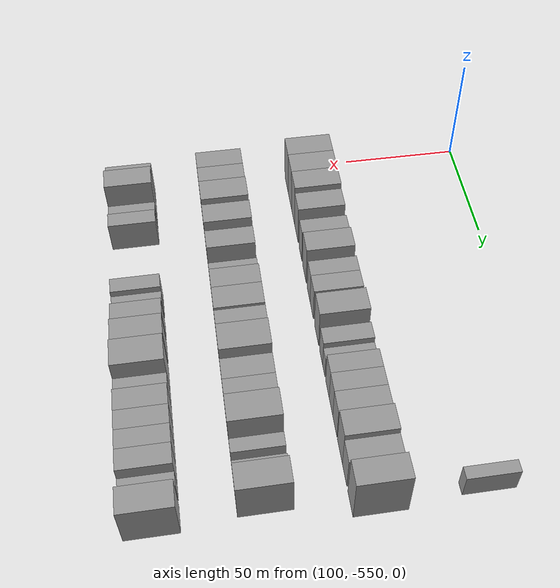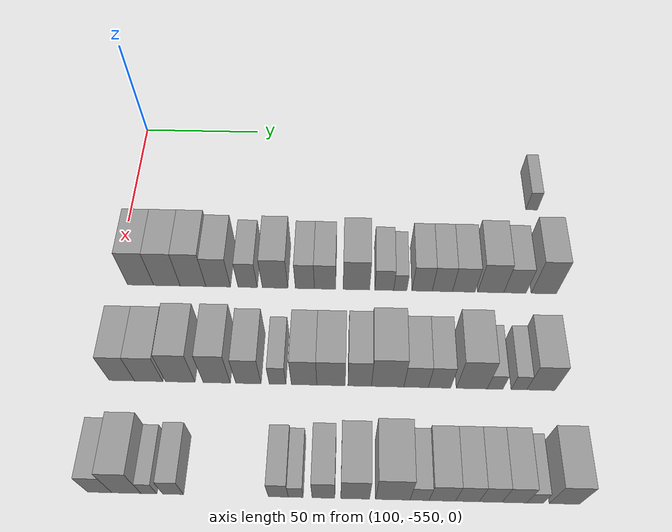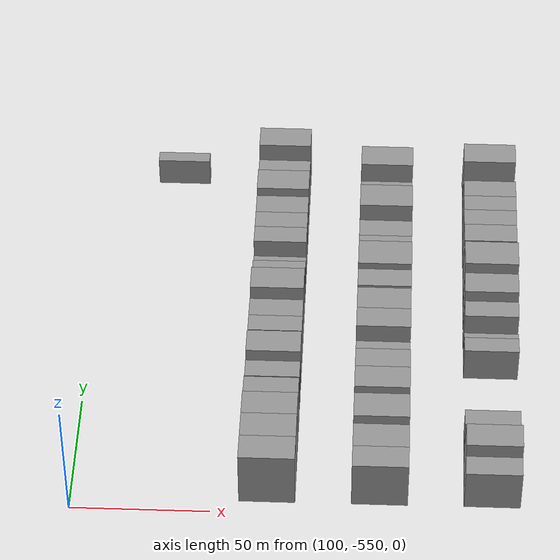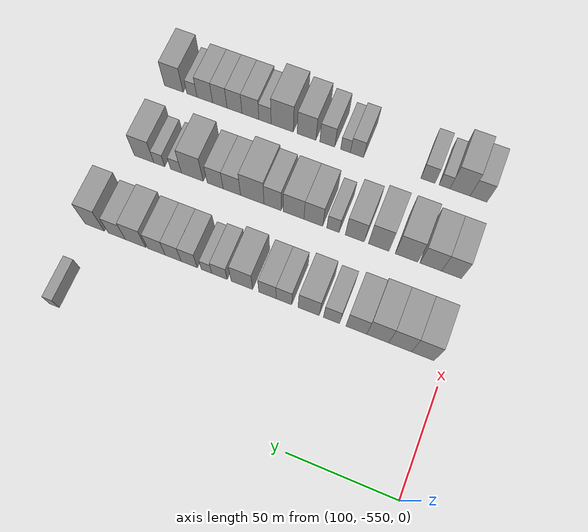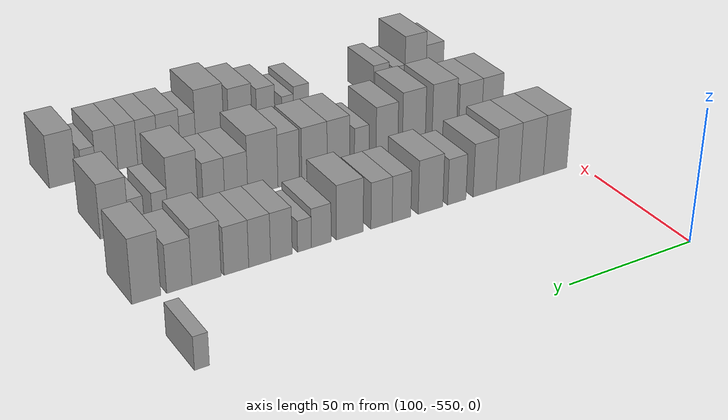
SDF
<sdf version="1.6">
 <world name="default">
  <model name="building_296">
   <static>1</static>
   <pose>130.0000 -380.8718 0 0.000000 0.000000 0.000000</pose>
   <link name="link">
    <pose>0 0 6.00 0 0 0</pose>
    <collision name="collision"><geometry><box><size>20.0000 4.8590 12.0000</size></box></geometry></collision>
    <visual name="visual">
     <cast_shadows>0</cast_shadows>
     <geometry><box><size>20.0000 4.8590 12.0000</size></box></geometry>
     <material>
      <script>
       <uri>model://grey_wall/materials/scripts</uri>
       <uri>model://grey_wall/materials/textures</uri>
       <name>vrc/grey_wall</name>
      </script>
     </material>
    </visual>
   </link>
  </model>
  <model name="building_418">
   <static>1</static>
   <pose>170.0000 -539.7551 0 0.000000 0.000000 0.000000</pose>
   <link name="link">
    <pose>0 0 12.00 0 0 0</pose>
    <collision name="collision"><geometry><box><size>20.0000 10.3773 24.0000</size></box></geometry></collision>
    <visual name="visual">
     <cast_shadows>0</cast_shadows>
     <geometry><box><size>20.0000 10.3773 24.0000</size></box></geometry>
     <material>
      <script>
       <uri>model://grey_wall/materials/scripts</uri>
       <uri>model://grey_wall/materials/textures</uri>
       <name>vrc/grey_wall</name>
      </script>
     </material>
    </visual>
   </link>
  </model>
  <model name="building_419">
   <static>1</static>
   <pose>170.0000 -529.3177 0 0.000000 0.000000 0.000000</pose>
   <link name="link">
    <pose>0 0 12.00 0 0 0</pose>
    <collision name="collision"><geometry><box><size>20.0000 10.4975 24.0000</size></box></geometry></collision>
    <visual name="visual">
     <cast_shadows>0</cast_shadows>
     <geometry><box><size>20.0000 10.4975 24.0000</size></box></geometry>
     <material>
      <script>
       <uri>model://grey_wall/materials/scripts</uri>
       <uri>model://grey_wall/materials/textures</uri>
       <name>vrc/grey_wall</name>
      </script>
     </material>
    </visual>
   </link>
  </model>
  <model name="building_420">
   <static>1</static>
   <pose>170.0000 -518.9870 0 0.000000 0.000000 0.000000</pose>
   <link name="link">
    <pose>0 0 12.00 0 0 0</pose>
    <collision name="collision"><geometry><box><size>20.0000 10.1640 24.0000</size></box></geometry></collision>
    <visual name="visual">
     <cast_shadows>0</cast_shadows>
     <geometry><box><size>20.0000 10.1640 24.0000</size></box></geometry>
     <material>
      <script>
       <uri>model://grey_wall/materials/scripts</uri>
       <uri>model://grey_wall/materials/textures</uri>
       <name>vrc/grey_wall</name>
      </script>
     </material>
    </visual>
   </link>
  </model>
  <model name="building_421">
   <static>1</static>
   <pose>170.0000 -509.0309 0 0.000000 0.000000 0.000000</pose>
   <link name="link">
    <pose>0 0 10.50 0 0 0</pose>
    <collision name="collision"><geometry><box><size>20.0000 9.7484 21.0000</size></box></geometry></collision>
    <visual name="visual">
     <cast_shadows>0</cast_shadows>
     <geometry><box><size>20.0000 9.7484 21.0000</size></box></geometry>
     <material>
      <script>
       <uri>model://grey_wall/materials/scripts</uri>
       <uri>model://grey_wall/materials/textures</uri>
       <name>vrc/grey_wall</name>
      </script>
     </material>
    </visual>
   </link>
  </model>
  <model name="building_422">
   <static>1</static>
   <pose>170.0000 -497.3444 0 0.000000 0.000000 0.000000</pose>
   <link name="link">
    <pose>0 0 9.00 0 0 0</pose>
    <collision name="collision"><geometry><box><size>20.0000 7.6246 18.0000</size></box></geometry></collision>
    <visual name="visual">
     <cast_shadows>0</cast_shadows>
     <geometry><box><size>20.0000 7.6246 18.0000</size></box></geometry>
     <material>
      <script>
       <uri>model://grey_wall/materials/scripts</uri>
       <uri>model://grey_wall/materials/textures</uri>
       <name>vrc/grey_wall</name>
      </script>
     </material>
    </visual>
   </link>
  </model>
  <model name="building_423">
   <static>1</static>
   <pose>170.0000 -486.5003 0 0.000000 0.000000 0.000000</pose>
   <link name="link">
    <pose>0 0 10.50 0 0 0</pose>
    <collision name="collision"><geometry><box><size>20.0000 10.0636 21.0000</size></box></geometry></collision>
    <visual name="visual">
     <cast_shadows>0</cast_shadows>
     <geometry><box><size>20.0000 10.0636 21.0000</size></box></geometry>
     <material>
      <script>
       <uri>model://grey_wall/materials/scripts</uri>
       <uri>model://grey_wall/materials/textures</uri>
       <name>vrc/grey_wall</name>
      </script>
     </material>
    </visual>
   </link>
  </model>
  <model name="building_424">
   <static>1</static>
   <pose>170.0000 -474.7204 0 0.000000 0.000000 0.000000</pose>
   <link name="link">
    <pose>0 0 9.00 0 0 0</pose>
    <collision name="collision"><geometry><box><size>20.0000 7.4962 18.0000</size></box></geometry></collision>
    <visual name="visual">
     <cast_shadows>0</cast_shadows>
     <geometry><box><size>20.0000 7.4962 18.0000</size></box></geometry>
     <material>
      <script>
       <uri>model://grey_wall/materials/scripts</uri>
       <uri>model://grey_wall/materials/textures</uri>
       <name>vrc/grey_wall</name>
      </script>
     </material>
    </visual>
   </link>
  </model>
  <model name="building_425">
   <static>1</static>
   <pose>170.0000 -466.7962 0 0.000000 0.000000 0.000000</pose>
   <link name="link">
    <pose>0 0 9.00 0 0 0</pose>
    <collision name="collision"><geometry><box><size>20.0000 8.3522 18.0000</size></box></geometry></collision>
    <visual name="visual">
     <cast_shadows>0</cast_shadows>
     <geometry><box><size>20.0000 8.3522 18.0000</size></box></geometry>
     <material>
      <script>
       <uri>model://grey_wall/materials/scripts</uri>
       <uri>model://grey_wall/materials/textures</uri>
       <name>vrc/grey_wall</name>
      </script>
     </material>
    </visual>
   </link>
  </model>
  <model name="building_426">
   <static>1</static>
   <pose>170.0000 -454.4233 0 0.000000 0.000000 0.000000</pose>
   <link name="link">
    <pose>0 0 10.50 0 0 0</pose>
    <collision name="collision"><geometry><box><size>20.0000 10.3938 21.0000</size></box></geometry></collision>
    <visual name="visual">
     <cast_shadows>0</cast_shadows>
     <geometry><box><size>20.0000 10.3938 21.0000</size></box></geometry>
     <material>
      <script>
       <uri>model://grey_wall/materials/scripts</uri>
       <uri>model://grey_wall/materials/textures</uri>
       <name>vrc/grey_wall</name>
      </script>
     </material>
    </visual>
   </link>
  </model>
  <model name="building_427">
   <static>1</static>
   <pose>170.0000 -443.4804 0 0.000000 0.000000 0.000000</pose>
   <link name="link">
    <pose>0 0 7.50 0 0 0</pose>
    <collision name="collision"><geometry><box><size>20.0000 7.4918 15.0000</size></box></geometry></collision>
    <visual name="visual">
     <cast_shadows>0</cast_shadows>
     <geometry><box><size>20.0000 7.4918 15.0000</size></box></geometry>
     <material>
      <script>
       <uri>model://grey_wall/materials/scripts</uri>
       <uri>model://grey_wall/materials/textures</uri>
       <name>vrc/grey_wall</name>
      </script>
     </material>
    </visual>
   </link>
  </model>
  <model name="building_428">
   <static>1</static>
   <pose>170.0000 -437.1403 0 0.000000 0.000000 0.000000</pose>
   <link name="link">
    <pose>0 0 6.00 0 0 0</pose>
    <collision name="collision"><geometry><box><size>20.0000 5.1885 12.0000</size></box></geometry></collision>
    <visual name="visual">
     <cast_shadows>0</cast_shadows>
     <geometry><box><size>20.0000 5.1885 12.0000</size></box></geometry>
     <material>
      <script>
       <uri>model://grey_wall/materials/scripts</uri>
       <uri>model://grey_wall/materials/textures</uri>
       <name>vrc/grey_wall</name>
      </script>
     </material>
    </visual>
   </link>
  </model>
  <model name="building_429">
   <static>1</static>
   <pose>170.0000 -428.5635 0 0.000000 0.000000 0.000000</pose>
   <link name="link">
    <pose>0 0 9.00 0 0 0</pose>
    <collision name="collision"><geometry><box><size>20.0000 7.9651 18.0000</size></box></geometry></collision>
    <visual name="visual">
     <cast_shadows>0</cast_shadows>
     <geometry><box><size>20.0000 7.9651 18.0000</size></box></geometry>
     <material>
      <script>
       <uri>model://grey_wall/materials/scripts</uri>
       <uri>model://grey_wall/materials/textures</uri>
       <name>vrc/grey_wall</name>
      </script>
     </material>
    </visual>
   </link>
  </model>
  <model name="building_430">
   <static>1</static>
   <pose>170.0000 -420.6002 0 0.000000 0.000000 0.000000</pose>
   <link name="link">
    <pose>0 0 9.00 0 0 0</pose>
    <collision name="collision"><geometry><box><size>20.0000 7.9614 18.0000</size></box></geometry></collision>
    <visual name="visual">
     <cast_shadows>0</cast_shadows>
     <geometry><box><size>20.0000 7.9614 18.0000</size></box></geometry>
     <material>
      <script>
       <uri>model://grey_wall/materials/scripts</uri>
       <uri>model://grey_wall/materials/textures</uri>
       <name>vrc/grey_wall</name>
      </script>
     </material>
    </visual>
   </link>
  </model>
  <model name="building_431">
   <static>1</static>
   <pose>170.0000 -412.1795 0 0.000000 0.000000 0.000000</pose>
   <link name="link">
    <pose>0 0 9.00 0 0 0</pose>
    <collision name="collision"><geometry><box><size>20.0000 8.8801 18.0000</size></box></geometry></collision>
    <visual name="visual">
     <cast_shadows>0</cast_shadows>
     <geometry><box><size>20.0000 8.8801 18.0000</size></box></geometry>
     <material>
      <script>
       <uri>model://grey_wall/materials/scripts</uri>
       <uri>model://grey_wall/materials/textures</uri>
       <name>vrc/grey_wall</name>
      </script>
     </material>
    </visual>
   </link>
  </model>
  <model name="building_432">
   <static>1</static>
   <pose>170.0000 -401.6012 0 0.000000 0.000000 0.000000</pose>
   <link name="link">
    <pose>0 0 10.50 0 0 0</pose>
    <collision name="collision"><geometry><box><size>20.0000 10.2764 21.0000</size></box></geometry></collision>
    <visual name="visual">
     <cast_shadows>0</cast_shadows>
     <geometry><box><size>20.0000 10.2764 21.0000</size></box></geometry>
     <material>
      <script>
       <uri>model://grey_wall/materials/scripts</uri>
       <uri>model://grey_wall/materials/textures</uri>
       <name>vrc/grey_wall</name>
      </script>
     </material>
    </visual>
   </link>
  </model>
  <model name="building_433">
   <static>1</static>
   <pose>170.0000 -392.0845 0 0.000000 0.000000 0.000000</pose>
   <link name="link">
    <pose>0 0 9.00 0 0 0</pose>
    <collision name="collision"><geometry><box><size>20.0000 8.7571 18.0000</size></box></geometry></collision>
    <visual name="visual">
     <cast_shadows>0</cast_shadows>
     <geometry><box><size>20.0000 8.7571 18.0000</size></box></geometry>
     <material>
      <script>
       <uri>model://grey_wall/materials/scripts</uri>
       <uri>model://grey_wall/materials/textures</uri>
       <name>vrc/grey_wall</name>
      </script>
     </material>
    </visual>
   </link>
  </model>
  <model name="building_434">
   <static>1</static>
   <pose>170.0000 -380.7752 0 0.000000 0.000000 0.000000</pose>
   <link name="link">
    <pose>0 0 12.00 0 0 0</pose>
    <collision name="collision"><geometry><box><size>20.0000 9.8614 24.0000</size></box></geometry></collision>
    <visual name="visual">
     <cast_shadows>0</cast_shadows>
     <geometry><box><size>20.0000 9.8614 24.0000</size></box></geometry>
     <material>
      <script>
       <uri>model://grey_wall/materials/scripts</uri>
       <uri>model://grey_wall/materials/textures</uri>
       <name>vrc/grey_wall</name>
      </script>
     </material>
    </visual>
   </link>
  </model>
  <model name="building_554">
   <static>1</static>
   <pose>210.0000 -540.0779 0 0.000000 0.000000 0.000000</pose>
   <link name="link">
    <pose>0 0 10.50 0 0 0</pose>
    <collision name="collision"><geometry><box><size>20.0000 9.3793 21.0000</size></box></geometry></collision>
    <visual name="visual">
     <cast_shadows>0</cast_shadows>
     <geometry><box><size>20.0000 9.3793 21.0000</size></box></geometry>
     <material>
      <script>
       <uri>model://grey_wall/materials/scripts</uri>
       <uri>model://grey_wall/materials/textures</uri>
       <name>vrc/grey_wall</name>
      </script>
     </material>
    </visual>
   </link>
  </model>
  <model name="building_555">
   <static>1</static>
   <pose>210.0000 -530.2033 0 0.000000 0.000000 0.000000</pose>
   <link name="link">
    <pose>0 0 10.50 0 0 0</pose>
    <collision name="collision"><geometry><box><size>20.0000 10.3700 21.0000</size></box></geometry></collision>
    <visual name="visual">
     <cast_shadows>0</cast_shadows>
     <geometry><box><size>20.0000 10.3700 21.0000</size></box></geometry>
     <material>
      <script>
       <uri>model://grey_wall/materials/scripts</uri>
       <uri>model://grey_wall/materials/textures</uri>
       <name>vrc/grey_wall</name>
      </script>
     </material>
    </visual>
   </link>
  </model>
  <model name="building_556">
   <static>1</static>
   <pose>210.0000 -518.5811 0 0.000000 0.000000 0.000000</pose>
   <link name="link">
    <pose>0 0 12.00 0 0 0</pose>
    <collision name="collision"><geometry><box><size>20.0000 10.8743 24.0000</size></box></geometry></collision>
    <visual name="visual">
     <cast_shadows>0</cast_shadows>
     <geometry><box><size>20.0000 10.8743 24.0000</size></box></geometry>
     <material>
      <script>
       <uri>model://grey_wall/materials/scripts</uri>
       <uri>model://grey_wall/materials/textures</uri>
       <name>vrc/grey_wall</name>
      </script>
     </material>
    </visual>
   </link>
  </model>
  <model name="building_557">
   <static>1</static>
   <pose>210.0000 -505.1703 0 0.000000 0.000000 0.000000</pose>
   <link name="link">
    <pose>0 0 12.00 0 0 0</pose>
    <collision name="collision"><geometry><box><size>20.0000 9.9472 24.0000</size></box></geometry></collision>
    <visual name="visual">
     <cast_shadows>0</cast_shadows>
     <geometry><box><size>20.0000 9.9472 24.0000</size></box></geometry>
     <material>
      <script>
       <uri>model://grey_wall/materials/scripts</uri>
       <uri>model://grey_wall/materials/textures</uri>
       <name>vrc/grey_wall</name>
      </script>
     </material>
    </visual>
   </link>
  </model>
  <model name="building_558">
   <static>1</static>
   <pose>210.0000 -493.5555 0 0.000000 0.000000 0.000000</pose>
   <link name="link">
    <pose>0 0 10.50 0 0 0</pose>
    <collision name="collision"><geometry><box><size>20.0000 9.2826 21.0000</size></box></geometry></collision>
    <visual name="visual">
     <cast_shadows>0</cast_shadows>
     <geometry><box><size>20.0000 9.2826 21.0000</size></box></geometry>
     <material>
      <script>
       <uri>model://grey_wall/materials/scripts</uri>
       <uri>model://grey_wall/materials/textures</uri>
       <name>vrc/grey_wall</name>
      </script>
     </material>
    </visual>
   </link>
  </model>
  <model name="building_559">
   <static>1</static>
   <pose>210.0000 -482.8533 0 0.000000 0.000000 0.000000</pose>
   <link name="link">
    <pose>0 0 7.50 0 0 0</pose>
    <collision name="collision"><geometry><box><size>20.0000 6.1217 15.0000</size></box></geometry></collision>
    <visual name="visual">
     <cast_shadows>0</cast_shadows>
     <geometry><box><size>20.0000 6.1217 15.0000</size></box></geometry>
     <material>
      <script>
       <uri>model://grey_wall/materials/scripts</uri>
       <uri>model://grey_wall/materials/textures</uri>
       <name>vrc/grey_wall</name>
      </script>
     </material>
    </visual>
   </link>
  </model>
  <model name="building_560">
   <static>1</static>
   <pose>210.0000 -473.1488 0 0.000000 0.000000 0.000000</pose>
   <link name="link">
    <pose>0 0 10.50 0 0 0</pose>
    <collision name="collision"><geometry><box><size>20.0000 9.2872 21.0000</size></box></geometry></collision>
    <visual name="visual">
     <cast_shadows>0</cast_shadows>
     <geometry><box><size>20.0000 9.2872 21.0000</size></box></geometry>
     <material>
      <script>
       <uri>model://grey_wall/materials/scripts</uri>
       <uri>model://grey_wall/materials/textures</uri>
       <name>vrc/grey_wall</name>
      </script>
     </material>
    </visual>
   </link>
  </model>
  <model name="building_561">
   <static>1</static>
   <pose>210.0000 -463.3242 0 0.000000 0.000000 0.000000</pose>
   <link name="link">
    <pose>0 0 10.50 0 0 0</pose>
    <collision name="collision"><geometry><box><size>20.0000 10.3621 21.0000</size></box></geometry></collision>
    <visual name="visual">
     <cast_shadows>0</cast_shadows>
     <geometry><box><size>20.0000 10.3621 21.0000</size></box></geometry>
     <material>
      <script>
       <uri>model://grey_wall/materials/scripts</uri>
       <uri>model://grey_wall/materials/textures</uri>
       <name>vrc/grey_wall</name>
      </script>
     </material>
    </visual>
   </link>
  </model>
  <model name="building_562">
   <static>1</static>
   <pose>210.0000 -452.8515 0 0.000000 0.000000 0.000000</pose>
   <link name="link">
    <pose>0 0 10.50 0 0 0</pose>
    <collision name="collision"><geometry><box><size>20.0000 8.5832 21.0000</size></box></geometry></collision>
    <visual name="visual">
     <cast_shadows>0</cast_shadows>
     <geometry><box><size>20.0000 8.5832 21.0000</size></box></geometry>
     <material>
      <script>
       <uri>model://grey_wall/materials/scripts</uri>
       <uri>model://grey_wall/materials/textures</uri>
       <name>vrc/grey_wall</name>
      </script>
     </material>
    </visual>
   </link>
  </model>
  <model name="building_563">
   <static>1</static>
   <pose>210.0000 -442.6322 0 0.000000 0.000000 0.000000</pose>
   <link name="link">
    <pose>0 0 12.00 0 0 0</pose>
    <collision name="collision"><geometry><box><size>20.0000 11.8555 24.0000</size></box></geometry></collision>
    <visual name="visual">
     <cast_shadows>0</cast_shadows>
     <geometry><box><size>20.0000 11.8555 24.0000</size></box></geometry>
     <material>
      <script>
       <uri>model://grey_wall/materials/scripts</uri>
       <uri>model://grey_wall/materials/textures</uri>
       <name>vrc/grey_wall</name>
      </script>
     </material>
    </visual>
   </link>
  </model>
  <model name="building_564">
   <static>1</static>
   <pose>210.0000 -432.2557 0 0.000000 0.000000 0.000000</pose>
   <link name="link">
    <pose>0 0 9.00 0 0 0</pose>
    <collision name="collision"><geometry><box><size>20.0000 8.8976 18.0000</size></box></geometry></collision>
    <visual name="visual">
     <cast_shadows>0</cast_shadows>
     <geometry><box><size>20.0000 8.8976 18.0000</size></box></geometry>
     <material>
      <script>
       <uri>model://grey_wall/materials/scripts</uri>
       <uri>model://grey_wall/materials/textures</uri>
       <name>vrc/grey_wall</name>
      </script>
     </material>
    </visual>
   </link>
  </model>
  <model name="building_565">
   <static>1</static>
   <pose>210.0000 -423.7216 0 0.000000 0.000000 0.000000</pose>
   <link name="link">
    <pose>0 0 9.00 0 0 0</pose>
    <collision name="collision"><geometry><box><size>20.0000 8.1706 18.0000</size></box></geometry></collision>
    <visual name="visual">
     <cast_shadows>0</cast_shadows>
     <geometry><box><size>20.0000 8.1706 18.0000</size></box></geometry>
     <material>
      <script>
       <uri>model://grey_wall/materials/scripts</uri>
       <uri>model://grey_wall/materials/textures</uri>
       <name>vrc/grey_wall</name>
      </script>
     </material>
    </visual>
   </link>
  </model>
  <model name="building_566">
   <static>1</static>
   <pose>210.0000 -411.9865 0 0.000000 0.000000 0.000000</pose>
   <link name="link">
    <pose>0 0 12.00 0 0 0</pose>
    <collision name="collision"><geometry><box><size>20.0000 11.2995 24.0000</size></box></geometry></collision>
    <visual name="visual">
     <cast_shadows>0</cast_shadows>
     <geometry><box><size>20.0000 11.2995 24.0000</size></box></geometry>
     <material>
      <script>
       <uri>model://grey_wall/materials/scripts</uri>
       <uri>model://grey_wall/materials/textures</uri>
       <name>vrc/grey_wall</name>
      </script>
     </material>
    </visual>
   </link>
  </model>
  <model name="building_567">
   <static>1</static>
   <pose>210.0000 -403.4936 0 0.000000 0.000000 0.000000</pose>
   <link name="link">
    <pose>0 0 6.00 0 0 0</pose>
    <collision name="collision"><geometry><box><size>20.0000 5.6864 12.0000</size></box></geometry></collision>
    <visual name="visual">
     <cast_shadows>0</cast_shadows>
     <geometry><box><size>20.0000 5.6864 12.0000</size></box></geometry>
     <material>
      <script>
       <uri>model://grey_wall/materials/scripts</uri>
       <uri>model://grey_wall/materials/textures</uri>
       <name>vrc/grey_wall</name>
      </script>
     </material>
    </visual>
   </link>
  </model>
  <model name="building_568">
   <static>1</static>
   <pose>210.0000 -394.8046 0 0.000000 0.000000 0.000000</pose>
   <link name="link">
    <pose>0 0 6.00 0 0 0</pose>
    <collision name="collision"><geometry><box><size>20.0000 5.6917 12.0000</size></box></geometry></collision>
    <visual name="visual">
     <cast_shadows>0</cast_shadows>
     <geometry><box><size>20.0000 5.6917 12.0000</size></box></geometry>
     <material>
      <script>
       <uri>model://grey_wall/materials/scripts</uri>
       <uri>model://grey_wall/materials/textures</uri>
       <name>vrc/grey_wall</name>
      </script>
     </material>
    </visual>
   </link>
  </model>
  <model name="building_569">
   <static>1</static>
   <pose>210.0000 -386.8399 0 0.000000 0.000000 0.000000</pose>
   <link name="link">
    <pose>0 0 10.50 0 0 0</pose>
    <collision name="collision"><geometry><box><size>20.0000 10.2375 21.0000</size></box></geometry></collision>
    <visual name="visual">
     <cast_shadows>0</cast_shadows>
     <geometry><box><size>20.0000 10.2375 21.0000</size></box></geometry>
     <material>
      <script>
       <uri>model://grey_wall/materials/scripts</uri>
       <uri>model://grey_wall/materials/textures</uri>
       <name>vrc/grey_wall</name>
      </script>
     </material>
    </visual>
   </link>
  </model>
  <model name="building_700">
   <static>1</static>
   <pose>250.0000 -540.3964 0 0.000000 0.000000 0.000000</pose>
   <link name="link">
    <pose>0 0 9.00 0 0 0</pose>
    <collision name="collision"><geometry><box><size>20.0000 8.2058 18.0000</size></box></geometry></collision>
    <visual name="visual">
     <cast_shadows>0</cast_shadows>
     <geometry><box><size>20.0000 8.2058 18.0000</size></box></geometry>
     <material>
      <script>
       <uri>model://grey_wall/materials/scripts</uri>
       <uri>model://grey_wall/materials/textures</uri>
       <name>vrc/grey_wall</name>
      </script>
     </material>
    </visual>
   </link>
  </model>
  <model name="building_701">
   <static>1</static>
   <pose>250.0000 -531.3407 0 0.000000 0.000000 0.000000</pose>
   <link name="link">
    <pose>0 0 12.00 0 0 0</pose>
    <collision name="collision"><geometry><box><size>20.0000 9.9055 24.0000</size></box></geometry></collision>
    <visual name="visual">
     <cast_shadows>0</cast_shadows>
     <geometry><box><size>20.0000 9.9055 24.0000</size></box></geometry>
     <material>
      <script>
       <uri>model://grey_wall/materials/scripts</uri>
       <uri>model://grey_wall/materials/textures</uri>
       <name>vrc/grey_wall</name>
      </script>
     </material>
    </visual>
   </link>
  </model>
  <model name="building_702">
   <static>1</static>
   <pose>250.0000 -523.7107 0 0.000000 0.000000 0.000000</pose>
   <link name="link">
    <pose>0 0 6.00 0 0 0</pose>
    <collision name="collision"><geometry><box><size>20.0000 5.3545 12.0000</size></box></geometry></collision>
    <visual name="visual">
     <cast_shadows>0</cast_shadows>
     <geometry><box><size>20.0000 5.3545 12.0000</size></box></geometry>
     <material>
      <script>
       <uri>model://grey_wall/materials/scripts</uri>
       <uri>model://grey_wall/materials/textures</uri>
       <name>vrc/grey_wall</name>
      </script>
     </material>
    </visual>
   </link>
  </model>
  <model name="building_703">
   <static>1</static>
   <pose>250.0000 -515.5257 0 0.000000 0.000000 0.000000</pose>
   <link name="link">
    <pose>0 0 7.50 0 0 0</pose>
    <collision name="collision"><geometry><box><size>20.0000 7.0156 15.0000</size></box></geometry></collision>
    <visual name="visual">
     <cast_shadows>0</cast_shadows>
     <geometry><box><size>20.0000 7.0156 15.0000</size></box></geometry>
     <material>
      <script>
       <uri>model://grey_wall/materials/scripts</uri>
       <uri>model://grey_wall/materials/textures</uri>
       <name>vrc/grey_wall</name>
      </script>
     </material>
    </visual>
   </link>
  </model>
  <model name="building_704">
   <static>1</static>
   <pose>250.0000 -479.9669 0 0.000000 0.000000 0.000000</pose>
   <link name="link">
    <pose>0 0 7.50 0 0 0</pose>
    <collision name="collision"><geometry><box><size>20.0000 6.7007 15.0000</size></box></geometry></collision>
    <visual name="visual">
     <cast_shadows>0</cast_shadows>
     <geometry><box><size>20.0000 6.7007 15.0000</size></box></geometry>
     <material>
      <script>
       <uri>model://grey_wall/materials/scripts</uri>
       <uri>model://grey_wall/materials/textures</uri>
       <name>vrc/grey_wall</name>
      </script>
     </material>
    </visual>
   </link>
  </model>
  <model name="building_705">
   <static>1</static>
   <pose>250.0000 -474.1023 0 0.000000 0.000000 0.000000</pose>
   <link name="link">
    <pose>0 0 6.00 0 0 0</pose>
    <collision name="collision"><geometry><box><size>20.0000 5.0285 12.0000</size></box></geometry></collision>
    <visual name="visual">
     <cast_shadows>0</cast_shadows>
     <geometry><box><size>20.0000 5.0285 12.0000</size></box></geometry>
     <material>
      <script>
       <uri>model://grey_wall/materials/scripts</uri>
       <uri>model://grey_wall/materials/textures</uri>
       <name>vrc/grey_wall</name>
      </script>
     </material>
    </visual>
   </link>
  </model>
  <model name="building_706">
   <static>1</static>
   <pose>250.0000 -464.7578 0 0.000000 0.000000 0.000000</pose>
   <link name="link">
    <pose>0 0 9.00 0 0 0</pose>
    <collision name="collision"><geometry><box><size>20.0000 7.6605 18.0000</size></box></geometry></collision>
    <visual name="visual">
     <cast_shadows>0</cast_shadows>
     <geometry><box><size>20.0000 7.6605 18.0000</size></box></geometry>
     <material>
      <script>
       <uri>model://grey_wall/materials/scripts</uri>
       <uri>model://grey_wall/materials/textures</uri>
       <name>vrc/grey_wall</name>
      </script>
     </material>
    </visual>
   </link>
  </model>
  <model name="building_707">
   <static>1</static>
   <pose>250.0000 -454.0921 0 0.000000 0.000000 0.000000</pose>
   <link name="link">
    <pose>0 0 10.50 0 0 0</pose>
    <collision name="collision"><geometry><box><size>20.0000 9.6708 21.0000</size></box></geometry></collision>
    <visual name="visual">
     <cast_shadows>0</cast_shadows>
     <geometry><box><size>20.0000 9.6708 21.0000</size></box></geometry>
     <material>
      <script>
       <uri>model://grey_wall/materials/scripts</uri>
       <uri>model://grey_wall/materials/textures</uri>
       <name>vrc/grey_wall</name>
      </script>
     </material>
    </visual>
   </link>
  </model>
  <model name="building_708">
   <static>1</static>
   <pose>250.0000 -441.4724 0 0.000000 0.000000 0.000000</pose>
   <link name="link">
    <pose>0 0 12.00 0 0 0</pose>
    <collision name="collision"><geometry><box><size>20.0000 11.5687 24.0000</size></box></geometry></collision>
    <visual name="visual">
     <cast_shadows>0</cast_shadows>
     <geometry><box><size>20.0000 11.5687 24.0000</size></box></geometry>
     <material>
      <script>
       <uri>model://grey_wall/materials/scripts</uri>
       <uri>model://grey_wall/materials/textures</uri>
       <name>vrc/grey_wall</name>
      </script>
     </material>
    </visual>
   </link>
  </model>
  <model name="building_709">
   <static>1</static>
   <pose>250.0000 -432.4826 0 0.000000 0.000000 0.000000</pose>
   <link name="link">
    <pose>0 0 7.50 0 0 0</pose>
    <collision name="collision"><geometry><box><size>20.0000 6.4109 15.0000</size></box></geometry></collision>
    <visual name="visual">
     <cast_shadows>0</cast_shadows>
     <geometry><box><size>20.0000 6.4109 15.0000</size></box></geometry>
     <material>
      <script>
       <uri>model://grey_wall/materials/scripts</uri>
       <uri>model://grey_wall/materials/textures</uri>
       <name>vrc/grey_wall</name>
      </script>
     </material>
    </visual>
   </link>
  </model>
  <model name="building_710">
   <static>1</static>
   <pose>250.0000 -424.8323 0 0.000000 0.000000 0.000000</pose>
   <link name="link">
    <pose>0 0 9.00 0 0 0</pose>
    <collision name="collision"><geometry><box><size>20.0000 8.8897 18.0000</size></box></geometry></collision>
    <visual name="visual">
     <cast_shadows>0</cast_shadows>
     <geometry><box><size>20.0000 8.8897 18.0000</size></box></geometry>
     <material>
      <script>
       <uri>model://grey_wall/materials/scripts</uri>
       <uri>model://grey_wall/materials/textures</uri>
       <name>vrc/grey_wall</name>
      </script>
     </material>
    </visual>
   </link>
  </model>
  <model name="building_711">
   <static>1</static>
   <pose>250.0000 -416.4176 0 0.000000 0.000000 0.000000</pose>
   <link name="link">
    <pose>0 0 9.00 0 0 0</pose>
    <collision name="collision"><geometry><box><size>20.0000 7.9398 18.0000</size></box></geometry></collision>
    <visual name="visual">
     <cast_shadows>0</cast_shadows>
     <geometry><box><size>20.0000 7.9398 18.0000</size></box></geometry>
     <material>
      <script>
       <uri>model://grey_wall/materials/scripts</uri>
       <uri>model://grey_wall/materials/textures</uri>
       <name>vrc/grey_wall</name>
      </script>
     </material>
    </visual>
   </link>
  </model>
  <model name="building_712">
   <static>1</static>
   <pose>250.0000 -408.6231 0 0.000000 0.000000 0.000000</pose>
   <link name="link">
    <pose>0 0 9.00 0 0 0</pose>
    <collision name="collision"><geometry><box><size>20.0000 7.6492 18.0000</size></box></geometry></collision>
    <visual name="visual">
     <cast_shadows>0</cast_shadows>
     <geometry><box><size>20.0000 7.6492 18.0000</size></box></geometry>
     <material>
      <script>
       <uri>model://grey_wall/materials/scripts</uri>
       <uri>model://grey_wall/materials/textures</uri>
       <name>vrc/grey_wall</name>
      </script>
     </material>
    </visual>
   </link>
  </model>
  <model name="building_713">
   <static>1</static>
   <pose>250.0000 -400.6230 0 0.000000 0.000000 0.000000</pose>
   <link name="link">
    <pose>0 0 9.00 0 0 0</pose>
    <collision name="collision"><geometry><box><size>20.0000 8.3508 18.0000</size></box></geometry></collision>
    <visual name="visual">
     <cast_shadows>0</cast_shadows>
     <geometry><box><size>20.0000 8.3508 18.0000</size></box></geometry>
     <material>
      <script>
       <uri>model://grey_wall/materials/scripts</uri>
       <uri>model://grey_wall/materials/textures</uri>
       <name>vrc/grey_wall</name>
      </script>
     </material>
    </visual>
   </link>
  </model>
  <model name="building_714">
   <static>1</static>
   <pose>250.0000 -393.7118 0 0.000000 0.000000 0.000000</pose>
   <link name="link">
    <pose>0 0 6.00 0 0 0</pose>
    <collision name="collision"><geometry><box><size>20.0000 5.4717 12.0000</size></box></geometry></collision>
    <visual name="visual">
     <cast_shadows>0</cast_shadows>
     <geometry><box><size>20.0000 5.4717 12.0000</size></box></geometry>
     <material>
      <script>
       <uri>model://grey_wall/materials/scripts</uri>
       <uri>model://grey_wall/materials/textures</uri>
       <name>vrc/grey_wall</name>
      </script>
     </material>
    </visual>
   </link>
  </model>
  <model name="building_715">
   <static>1</static>
   <pose>250.0000 -383.9174 0 0.000000 0.000000 0.000000</pose>
   <link name="link">
    <pose>0 0 10.50 0 0 0</pose>
    <collision name="collision"><geometry><box><size>20.0000 10.1171 21.0000</size></box></geometry></collision>
    <visual name="visual">
     <cast_shadows>0</cast_shadows>
     <geometry><box><size>20.0000 10.1171 21.0000</size></box></geometry>
     <material>
      <script>
       <uri>model://grey_wall/materials/scripts</uri>
       <uri>model://grey_wall/materials/textures</uri>
       <name>vrc/grey_wall</name>
      </script>
     </material>
    </visual>
   </link>
  </model>
 </world>
</sdf>
